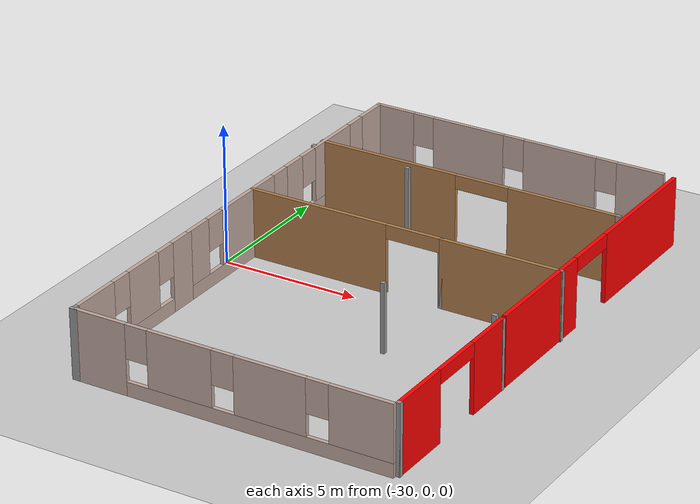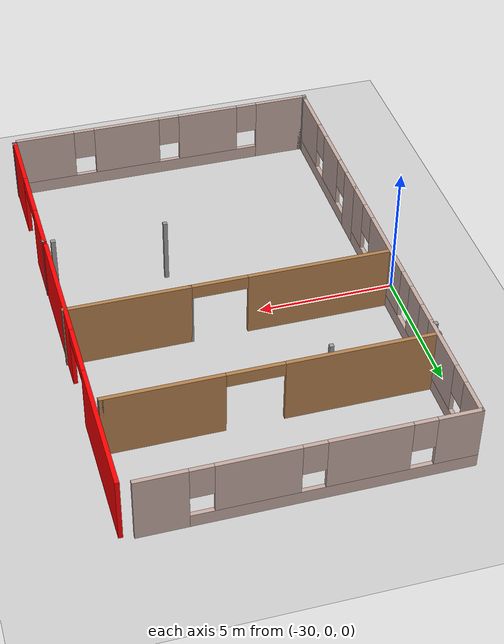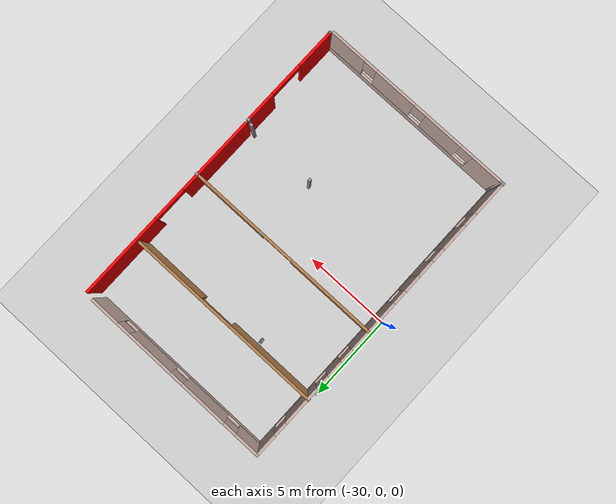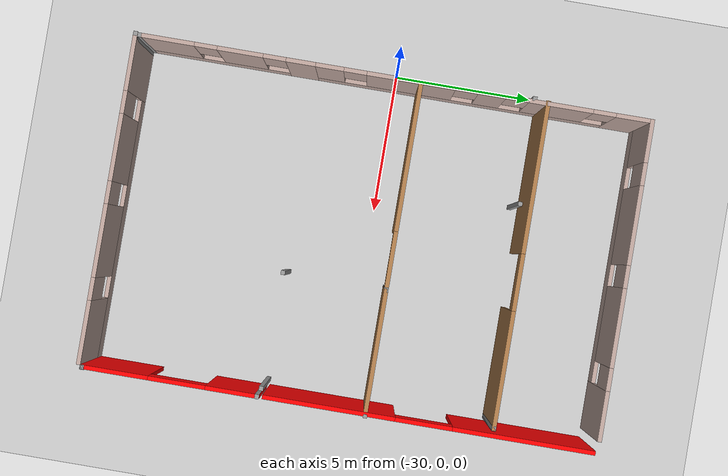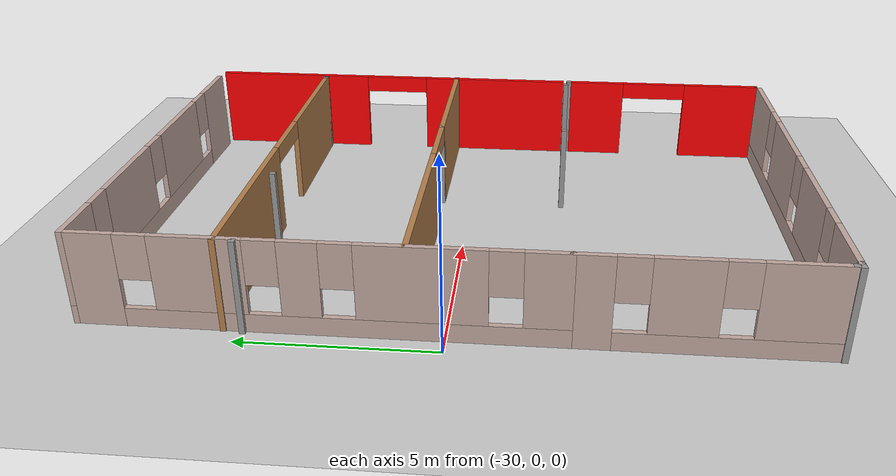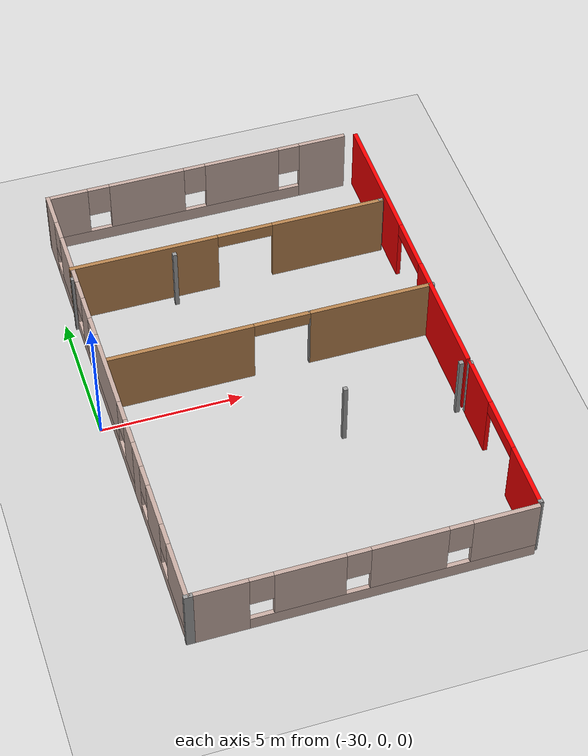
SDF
<sdf version="1.6">
 <world name="default">
  <model name="ground_plane">
   <static>1</static>
   <link name="link">
    <collision name="collision">
     <geometry><plane><normal>0 0 1</normal><size>100 100</size></plane></geometry>
     <surface><friction><ode><mu>100</mu><mu2>50</mu2></ode></friction></surface>
    </collision>
    <visual name="visual">
     <cast_shadows>0</cast_shadows>
     <geometry><plane><normal>0 0 1</normal><size>100 100</size></plane></geometry>
     <material>
      <script><uri>file://media/materials/scripts/gazebo.material</uri><name>Gazebo/Grey</name></script>
     </material>
    </visual>
   </link>
  </model>
  <model name="FloorPlan">
   <pose>0.309467 -3.19534 0 0 -0 0</pose>
   <link name="Wall_11">
    <pose>-18.2258 6.2811 0 0 -0 -1.5708</pose>
    <visual name="Wall_11_Visual_0">
     <pose>-3.31145 0 1.25 0 -0 0</pose>
     <geometry><box><size>4.97711 0.15 2.5</size></box></geometry>
     <material>
      <script><uri>file://media/materials/scripts/gazebo.material</uri><name>Gazebo/Grey</name></script>
      <ambient>1 0 0 1</ambient>
     </material>
     <meta><layer>0</layer></meta>
    </visual>
    <collision name="Wall_11_Collision_0">
     <geometry><box><size>4.97711 0.15 2.5</size></box></geometry>
     <pose>-3.31145 0 1.25 0 -0 0</pose>
    </collision>
    <visual name="Wall_11_Visual_1">
     <pose>3.48855 0 1.25 0 -0 0</pose>
     <geometry><box><size>4.62289 0.15 2.5</size></box></geometry>
     <material>
      <script><uri>file://media/materials/scripts/gazebo.material</uri><name>Gazebo/Grey</name></script>
      <ambient>1 0 0 1</ambient>
     </material>
     <meta><layer>0</layer></meta>
    </visual>
    <collision name="Wall_11_Collision_1">
     <geometry><box><size>4.62289 0.15 2.5</size></box></geometry>
     <pose>3.48855 0 1.25 0 -0 0</pose>
    </collision>
    <visual name="Wall_11_Visual_2">
     <pose>0.177109 0 2.25 0 -0 0</pose>
     <geometry><box><size>2 0.15 0.5</size></box></geometry>
     <material>
      <script><uri>file://media/materials/scripts/gazebo.material</uri><name>Gazebo/Grey</name></script>
      <ambient>1 0 0 1</ambient>
     </material>
     <meta><layer>0</layer></meta>
    </visual>
    <collision name="Wall_11_Collision_2">
     <geometry><box><size>2 0.15 0.5</size></box></geometry>
     <pose>0.177109 0 2.25 0 -0 0</pose>
    </collision>
   </link>
   <link name="Wall_13">
    <pose>-24.2574 12.1498 0 0 -0 3.14159</pose>
    <visual name="Wall_13_Visual_0">
     <pose>-4.7442 0 1.25 0 -0 0</pose>
     <geometry><box><size>1.7616 0.15 2.5</size></box></geometry>
     <material>
      <script><uri>file://media/materials/scripts/gazebo.material</uri><name>Gazebo/Grey</name></script>
      <ambient>0.760784 0.662745 0.627451 1</ambient>
     </material>
     <meta><layer>0</layer></meta>
    </visual>
    <collision name="Wall_13_Collision_0">
     <geometry><box><size>1.7616 0.15 2.5</size></box></geometry>
     <pose>-4.7442 0 1.25 0 -0 0</pose>
    </collision>
    <visual name="Wall_13_Visual_1">
     <pose>0.880798 0 0.25 0 -0 0</pose>
     <geometry><box><size>9.4884 0.15 0.5</size></box></geometry>
     <material>
      <script><uri>file://media/materials/scripts/gazebo.material</uri><name>Gazebo/Grey</name></script>
      <ambient>0.760784 0.662745 0.627451 1</ambient>
     </material>
     <meta><layer>0</layer></meta>
    </visual>
    <collision name="Wall_13_Collision_1">
     <geometry><box><size>9.4884 0.15 0.5</size></box></geometry>
     <pose>0.880798 0 0.25 0 -0 0</pose>
    </collision>
    <visual name="Wall_13_Visual_2">
     <pose>-1.67107 0 1.5 0 -0 0</pose>
     <geometry><box><size>2.78467 0.15 2</size></box></geometry>
     <material>
      <script><uri>file://media/materials/scripts/gazebo.material</uri><name>Gazebo/Grey</name></script>
      <ambient>0.760784 0.662745 0.627451 1</ambient>
     </material>
     <meta><layer>0</layer></meta>
    </visual>
    <collision name="Wall_13_Collision_2">
     <geometry><box><size>2.78467 0.15 2</size></box></geometry>
     <pose>-1.67107 0 1.5 0 -0 0</pose>
    </collision>
    <visual name="Wall_13_Visual_3">
     <pose>1.9136 0 1.5 0 -0 0</pose>
     <geometry><box><size>2.78467 0.15 2</size></box></geometry>
     <material>
      <script><uri>file://media/materials/scripts/gazebo.material</uri><name>Gazebo/Grey</name></script>
      <ambient>0.760784 0.662745 0.627451 1</ambient>
     </material>
     <meta><layer>0</layer></meta>
    </visual>
    <collision name="Wall_13_Collision_3">
     <geometry><box><size>2.78467 0.15 2</size></box></geometry>
     <pose>1.9136 0 1.5 0 -0 0</pose>
    </collision>
    <visual name="Wall_13_Visual_4">
     <pose>4.86547 0 1.5 0 -0 0</pose>
     <geometry><box><size>1.51907 0.15 2</size></box></geometry>
     <material>
      <script><uri>file://media/materials/scripts/gazebo.material</uri><name>Gazebo/Grey</name></script>
      <ambient>0.760784 0.662745 0.627451 1</ambient>
     </material>
     <meta><layer>0</layer></meta>
    </visual>
    <collision name="Wall_13_Collision_4">
     <geometry><box><size>1.51907 0.15 2</size></box></geometry>
     <pose>4.86547 0 1.5 0 -0 0</pose>
    </collision>
    <visual name="Wall_13_Visual_5">
     <pose>-3.4634 0 1.9 0 -0 0</pose>
     <geometry><box><size>0.8 0.15 1.2</size></box></geometry>
     <material>
      <script><uri>file://media/materials/scripts/gazebo.material</uri><name>Gazebo/Grey</name></script>
      <ambient>0.760784 0.662745 0.627451 1</ambient>
     </material>
     <meta><layer>0</layer></meta>
    </visual>
    <collision name="Wall_13_Collision_5">
     <geometry><box><size>0.8 0.15 1.2</size></box></geometry>
     <pose>-3.4634 0 1.9 0 -0 0</pose>
    </collision>
    <visual name="Wall_13_Visual_6">
     <pose>0.121265 0 1.9 0 -0 0</pose>
     <geometry><box><size>0.8 0.15 1.2</size></box></geometry>
     <material>
      <script><uri>file://media/materials/scripts/gazebo.material</uri><name>Gazebo/Grey</name></script>
      <ambient>0.760784 0.662745 0.627451 1</ambient>
     </material>
     <meta><layer>0</layer></meta>
    </visual>
    <collision name="Wall_13_Collision_6">
     <geometry><box><size>0.8 0.15 1.2</size></box></geometry>
     <pose>0.121265 0 1.9 0 -0 0</pose>
    </collision>
    <visual name="Wall_13_Visual_7">
     <pose>3.70593 0 1.9 0 -0 0</pose>
     <geometry><box><size>0.8 0.15 1.2</size></box></geometry>
     <material>
      <script><uri>file://media/materials/scripts/gazebo.material</uri><name>Gazebo/Grey</name></script>
      <ambient>0.760784 0.662745 0.627451 1</ambient>
     </material>
     <meta><layer>0</layer></meta>
    </visual>
    <collision name="Wall_13_Collision_7">
     <geometry><box><size>0.8 0.15 1.2</size></box></geometry>
     <pose>3.70593 0 1.9 0 -0 0</pose>
    </collision>
   </link>
   <link name="Wall_14">
    <pose>-29.8074 6.22478 0 0 -0 -1.5708</pose>
    <visual name="Wall_14_Visual_0">
     <pose>-5.33321 0 1.25 0 -0 0</pose>
     <geometry><box><size>1.33358 0.15 2.5</size></box></geometry>
     <material>
      <script><uri>file://media/materials/scripts/gazebo.material</uri><name>Gazebo/Grey</name></script>
      <ambient>0.760784 0.662745 0.627451 1</ambient>
     </material>
     <meta><layer>0</layer></meta>
    </visual>
    <collision name="Wall_14_Collision_0">
     <geometry><box><size>1.33358 0.15 2.5</size></box></geometry>
     <pose>-5.33321 0 1.25 0 -0 0</pose>
    </collision>
    <visual name="Wall_14_Visual_1">
     <pose>0.666789 0 0.25 0 -0 0</pose>
     <geometry><box><size>10.6664 0.15 0.5</size></box></geometry>
     <material>
      <script><uri>file://media/materials/scripts/gazebo.material</uri><name>Gazebo/Grey</name></script>
      <ambient>0.760784 0.662745 0.627451 1</ambient>
     </material>
     <meta><layer>0</layer></meta>
    </visual>
    <collision name="Wall_14_Collision_1">
     <geometry><box><size>10.6664 0.15 0.5</size></box></geometry>
     <pose>0.666789 0 0.25 0 -0 0</pose>
    </collision>
    <visual name="Wall_14_Visual_2">
     <pose>-2.7416 0 1.5 0 -0 0</pose>
     <geometry><box><size>2.24964 0.15 2</size></box></geometry>
     <material>
      <script><uri>file://media/materials/scripts/gazebo.material</uri><name>Gazebo/Grey</name></script>
      <ambient>0.760784 0.662745 0.627451 1</ambient>
     </material>
     <meta><layer>0</layer></meta>
    </visual>
    <collision name="Wall_14_Collision_2">
     <geometry><box><size>2.24964 0.15 2</size></box></geometry>
     <pose>-2.7416 0 1.5 0 -0 0</pose>
    </collision>
    <visual name="Wall_14_Visual_3">
     <pose>-0.333988 0 1.5 0 -0 0</pose>
     <geometry><box><size>0.965583 0.15 2</size></box></geometry>
     <material>
      <script><uri>file://media/materials/scripts/gazebo.material</uri><name>Gazebo/Grey</name></script>
      <ambient>0.760784 0.662745 0.627451 1</ambient>
     </material>
     <meta><layer>0</layer></meta>
    </visual>
    <collision name="Wall_14_Collision_3">
     <geometry><box><size>0.965583 0.15 2</size></box></geometry>
     <pose>-0.333988 0 1.5 0 -0 0</pose>
    </collision>
    <visual name="Wall_14_Visual_4">
     <pose>2.50164 0 1.5 0 -0 0</pose>
     <geometry><box><size>3.10568 0.15 2</size></box></geometry>
     <material>
      <script><uri>file://media/materials/scripts/gazebo.material</uri><name>Gazebo/Grey</name></script>
      <ambient>0.760784 0.662745 0.627451 1</ambient>
     </material>
     <meta><layer>0</layer></meta>
    </visual>
    <collision name="Wall_14_Collision_4">
     <geometry><box><size>3.10568 0.15 2</size></box></geometry>
     <pose>2.50164 0 1.5 0 -0 0</pose>
    </collision>
    <visual name="Wall_14_Visual_5">
     <pose>5.42724 0 1.5 0 -0 0</pose>
     <geometry><box><size>1.14552 0.15 2</size></box></geometry>
     <material>
      <script><uri>file://media/materials/scripts/gazebo.material</uri><name>Gazebo/Grey</name></script>
      <ambient>0.760784 0.662745 0.627451 1</ambient>
     </material>
     <meta><layer>0</layer></meta>
    </visual>
    <collision name="Wall_14_Collision_5">
     <geometry><box><size>1.14552 0.15 2</size></box></geometry>
     <pose>5.42724 0 1.5 0 -0 0</pose>
    </collision>
    <visual name="Wall_14_Visual_6">
     <pose>-4.26642 0 1.9 0 -0 0</pose>
     <geometry><box><size>0.8 0.15 1.2</size></box></geometry>
     <material>
      <script><uri>file://media/materials/scripts/gazebo.material</uri><name>Gazebo/Grey</name></script>
      <ambient>0.760784 0.662745 0.627451 1</ambient>
     </material>
     <meta><layer>0</layer></meta>
    </visual>
    <collision name="Wall_14_Collision_6">
     <geometry><box><size>0.8 0.15 1.2</size></box></geometry>
     <pose>-4.26642 0 1.9 0 -0 0</pose>
    </collision>
    <visual name="Wall_14_Visual_7">
     <pose>-1.21678 0 1.9 0 -0 0</pose>
     <geometry><box><size>0.8 0.15 1.2</size></box></geometry>
     <material>
      <script><uri>file://media/materials/scripts/gazebo.material</uri><name>Gazebo/Grey</name></script>
      <ambient>0.760784 0.662745 0.627451 1</ambient>
     </material>
     <meta><layer>0</layer></meta>
    </visual>
    <collision name="Wall_14_Collision_7">
     <geometry><box><size>0.8 0.15 1.2</size></box></geometry>
     <pose>-1.21678 0 1.9 0 -0 0</pose>
    </collision>
    <visual name="Wall_14_Visual_8">
     <pose>0.548803 0 1.9 0 -0 0</pose>
     <geometry><box><size>0.8 0.15 1.2</size></box></geometry>
     <material>
      <script><uri>file://media/materials/scripts/gazebo.material</uri><name>Gazebo/Grey</name></script>
      <ambient>0.760784 0.662745 0.627451 1</ambient>
     </material>
     <meta><layer>0</layer></meta>
    </visual>
    <collision name="Wall_14_Collision_8">
     <geometry><box><size>0.8 0.15 1.2</size></box></geometry>
     <pose>0.548803 0 1.9 0 -0 0</pose>
    </collision>
    <visual name="Wall_14_Visual_9">
     <pose>4.45449 0 1.9 0 -0 0</pose>
     <geometry><box><size>0.8 0.15 1.2</size></box></geometry>
     <material>
      <script><uri>file://media/materials/scripts/gazebo.material</uri><name>Gazebo/Grey</name></script>
      <ambient>0.760784 0.662745 0.627451 1</ambient>
     </material>
     <meta><layer>0</layer></meta>
    </visual>
    <collision name="Wall_14_Collision_9">
     <geometry><box><size>0.8 0.15 1.2</size></box></geometry>
     <pose>4.45449 0 1.9 0 -0 0</pose>
    </collision>
   </link>
   <link name="Wall_16">
    <collision name="Wall_16_Collision">
     <geometry><box><size>0.16 0.15 2.5</size></box></geometry>
     <pose>0 0 1.25 0 -0 0</pose>
    </collision>
    <visual name="Wall_16_Visual">
     <pose>0 0 1.25 0 -0 0</pose>
     <geometry><box><size>0.16 0.15 2.5</size></box></geometry>
     <material>
      <script><uri>file://media/materials/scripts/gazebo.material</uri><name>Gazebo/Grey</name></script>
      <ambient>1 1 1 1</ambient>
     </material>
     <meta><layer>0</layer></meta>
    </visual>
    <pose>-18.2024 0.299775 0 0 -0 0</pose>
   </link>
   <link name="Wall_19">
    <collision name="Wall_19_Collision">
     <geometry><box><size>0.15 0.15 2.5</size></box></geometry>
     <pose>0 0 1.25 0 -0 0</pose>
    </collision>
    <visual name="Wall_19_Visual">
     <pose>0 0 1.25 0 -0 0</pose>
     <geometry><box><size>0.15 0.15 2.5</size></box></geometry>
     <material>
      <script><uri>file://media/materials/scripts/gazebo.material</uri><name>Gazebo/Grey</name></script>
      <ambient>1 1 1 1</ambient>
     </material>
     <meta><layer>0</layer></meta>
    </visual>
    <pose>-29.9047 8.03008 0 0 -0 0</pose>
   </link>
   <link name="Wall_23">
    <collision name="Wall_23_Collision">
     <geometry><box><size>0.15 0.15 2.5</size></box></geometry>
     <pose>0 0 1.25 0 -0 0</pose>
    </collision>
    <visual name="Wall_23_Visual">
     <pose>0 0 1.25 0 -0 0</pose>
     <geometry><box><size>0.15 0.15 2.5</size></box></geometry>
     <material>
      <script><uri>file://media/materials/scripts/gazebo.material</uri><name>Gazebo/Grey</name></script>
      <ambient>1 1 1 1</ambient>
     </material>
     <meta><layer>0</layer></meta>
    </visual>
    <pose>-26.2408 8.12916 0 0 -0 0</pose>
   </link>
   <link name="Wall_34">
    <pose>-23.9824 4.0709 0 0 -0 0</pose>
    <visual name="Wall_34_Visual_0">
     <pose>-3.2427 0 1.25 0 -0 0</pose>
     <geometry><box><size>5.26459 0.15 2.5</size></box></geometry>
     <material>
      <script><uri>file://media/materials/scripts/gazebo.material</uri><name>Gazebo/Wood</name></script>
      <ambient>1 1 1 1</ambient>
     </material>
     <meta><layer>0</layer></meta>
    </visual>
    <collision name="Wall_34_Collision_0">
     <geometry><box><size>5.26459 0.15 2.5</size></box></geometry>
     <pose>-3.2427 0 1.25 0 -0 0</pose>
    </collision>
    <visual name="Wall_34_Visual_1">
     <pose>3.6323 0 1.25 0 -0 0</pose>
     <geometry><box><size>4.48541 0.15 2.5</size></box></geometry>
     <material>
      <script><uri>file://media/materials/scripts/gazebo.material</uri><name>Gazebo/Wood</name></script>
      <ambient>1 1 1 1</ambient>
     </material>
     <meta><layer>0</layer></meta>
    </visual>
    <collision name="Wall_34_Collision_1">
     <geometry><box><size>4.48541 0.15 2.5</size></box></geometry>
     <pose>3.6323 0 1.25 0 -0 0</pose>
    </collision>
    <visual name="Wall_34_Visual_2">
     <pose>0.389591 0 2.25 0 -0 0</pose>
     <geometry><box><size>2 0.15 0.5</size></box></geometry>
     <material>
      <script><uri>file://media/materials/scripts/gazebo.material</uri><name>Gazebo/Wood</name></script>
      <ambient>1 1 1 1</ambient>
     </material>
     <meta><layer>0</layer></meta>
    </visual>
    <collision name="Wall_34_Collision_2">
     <geometry><box><size>2 0.15 0.5</size></box></geometry>
     <pose>0.389591 0 2.25 0 -0 0</pose>
    </collision>
   </link>
   <link name="Wall_35">
    <collision name="Wall_35_Collision">
     <geometry><box><size>0.16 0.15 2.5</size></box></geometry>
     <pose>0 0 1.25 0 -0 0</pose>
    </collision>
    <visual name="Wall_35_Visual">
     <pose>0 0 1.25 0 -0 0</pose>
     <geometry><box><size>0.16 0.15 2.5</size></box></geometry>
     <material>
      <script><uri>file://media/materials/scripts/gazebo.material</uri><name>Gazebo/Grey</name></script>
      <ambient>1 1 1 1</ambient>
     </material>
     <meta><layer>0</layer></meta>
    </visual>
    <pose>-18.1774 4.0709 0 0 -0 0</pose>
   </link>
   <link name="Wall_40">
    <collision name="Wall_40_Collision">
     <geometry><box><size>0.16 0.15 2.5</size></box></geometry>
     <pose>0 0 1.25 0 -0 0</pose>
    </collision>
    <visual name="Wall_40_Visual">
     <pose>0 0 1.25 0 -0 0</pose>
     <geometry><box><size>0.16 0.15 2.5</size></box></geometry>
     <material>
      <script><uri>file://media/materials/scripts/gazebo.material</uri><name>Gazebo/Grey</name></script>
      <ambient>1 1 1 1</ambient>
     </material>
     <meta><layer>0</layer></meta>
    </visual>
    <pose>-22.5545 4.0709 0 0 -0 0</pose>
   </link>
   <link name="Wall_42">
    <collision name="Wall_42_Collision">
     <geometry><box><size>0.15 0.15 2.5</size></box></geometry>
     <pose>0 0 1.25 0 -0 0</pose>
    </collision>
    <visual name="Wall_42_Visual">
     <pose>0 0 1.25 0 -0 0</pose>
     <geometry><box><size>0.15 0.15 2.5</size></box></geometry>
     <material>
      <script><uri>file://media/materials/scripts/gazebo.material</uri><name>Gazebo/Grey</name></script>
      <ambient>1 1 1 1</ambient>
     </material>
     <meta><layer>0</layer></meta>
    </visual>
    <pose>-22.5495 0.470897 0 0 -0 0</pose>
   </link>
   <link name="Wall_47">
    <collision name="Wall_47_Collision">
     <geometry><box><size>0.3 0.15 2.5</size></box></geometry>
     <pose>0 0 1.25 0 -0 0</pose>
    </collision>
    <visual name="Wall_47_Visual">
     <pose>0 0 1.25 0 -0 0</pose>
     <geometry><box><size>0.3 0.15 2.5</size></box></geometry>
     <material>
      <script><uri>file://media/materials/scripts/gazebo.material</uri><name>Gazebo/Grey</name></script>
      <ambient>1 1 1 1</ambient>
     </material>
     <meta><layer>0</layer></meta>
    </visual>
    <pose>-29.7609 -5.93407 0 0 -0 0</pose>
   </link>
   <link name="Wall_48">
    <pose>-24.0109 -5.93407 0 0 -0 0</pose>
    <visual name="Wall_48_Visual_0">
     <pose>-4.78369 0 1.25 0 -0 0</pose>
     <geometry><box><size>1.93261 0.15 2.5</size></box></geometry>
     <material>
      <script><uri>file://media/materials/scripts/gazebo.material</uri><name>Gazebo/Grey</name></script>
      <ambient>0.760784 0.662745 0.627451 1</ambient>
     </material>
     <meta><layer>0</layer></meta>
    </visual>
    <collision name="Wall_48_Collision_0">
     <geometry><box><size>1.93261 0.15 2.5</size></box></geometry>
     <pose>-4.78369 0 1.25 0 -0 0</pose>
    </collision>
    <visual name="Wall_48_Visual_1">
     <pose>0.966306 0 0.25 0 -0 0</pose>
     <geometry><box><size>9.56739 0.15 0.5</size></box></geometry>
     <material>
      <script><uri>file://media/materials/scripts/gazebo.material</uri><name>Gazebo/Grey</name></script>
      <ambient>0.760784 0.662745 0.627451 1</ambient>
     </material>
     <meta><layer>0</layer></meta>
    </visual>
    <collision name="Wall_48_Collision_1">
     <geometry><box><size>9.56739 0.15 0.5</size></box></geometry>
     <pose>0.966306 0 0.25 0 -0 0</pose>
    </collision>
    <visual name="Wall_48_Visual_2">
     <pose>-1.83906 0 1.5 0 -0 0</pose>
     <geometry><box><size>2.35665 0.15 2</size></box></geometry>
     <material>
      <script><uri>file://media/materials/scripts/gazebo.material</uri><name>Gazebo/Grey</name></script>
      <ambient>0.760784 0.662745 0.627451 1</ambient>
     </material>
     <meta><layer>0</layer></meta>
    </visual>
    <collision name="Wall_48_Collision_2">
     <geometry><box><size>2.35665 0.15 2</size></box></geometry>
     <pose>-1.83906 0 1.5 0 -0 0</pose>
    </collision>
    <visual name="Wall_48_Visual_3">
     <pose>1.42459 0 1.5 0 -0 0</pose>
     <geometry><box><size>2.57066 0.15 2</size></box></geometry>
     <material>
      <script><uri>file://media/materials/scripts/gazebo.material</uri><name>Gazebo/Grey</name></script>
      <ambient>0.760784 0.662745 0.627451 1</ambient>
     </material>
     <meta><layer>0</layer></meta>
    </visual>
    <collision name="Wall_48_Collision_3">
     <geometry><box><size>2.57066 0.15 2</size></box></geometry>
     <pose>1.42459 0 1.5 0 -0 0</pose>
    </collision>
    <visual name="Wall_48_Visual_4">
     <pose>4.62996 0 1.5 0 -0 0</pose>
     <geometry><box><size>2.24008 0.15 2</size></box></geometry>
     <material>
      <script><uri>file://media/materials/scripts/gazebo.material</uri><name>Gazebo/Grey</name></script>
      <ambient>0.760784 0.662745 0.627451 1</ambient>
     </material>
     <meta><layer>0</layer></meta>
    </visual>
    <collision name="Wall_48_Collision_4">
     <geometry><box><size>2.24008 0.15 2</size></box></geometry>
     <pose>4.62996 0 1.5 0 -0 0</pose>
    </collision>
    <visual name="Wall_48_Visual_5">
     <pose>-3.41739 0 1.9 0 -0 0</pose>
     <geometry><box><size>0.8 0.15 1.2</size></box></geometry>
     <material>
      <script><uri>file://media/materials/scripts/gazebo.material</uri><name>Gazebo/Grey</name></script>
      <ambient>0.760784 0.662745 0.627451 1</ambient>
     </material>
     <meta><layer>0</layer></meta>
    </visual>
    <collision name="Wall_48_Collision_5">
     <geometry><box><size>0.8 0.15 1.2</size></box></geometry>
     <pose>-3.41739 0 1.9 0 -0 0</pose>
    </collision>
    <visual name="Wall_48_Visual_6">
     <pose>-0.26074 0 1.9 0 -0 0</pose>
     <geometry><box><size>0.8 0.15 1.2</size></box></geometry>
     <material>
      <script><uri>file://media/materials/scripts/gazebo.material</uri><name>Gazebo/Grey</name></script>
      <ambient>0.760784 0.662745 0.627451 1</ambient>
     </material>
     <meta><layer>0</layer></meta>
    </visual>
    <collision name="Wall_48_Collision_6">
     <geometry><box><size>0.8 0.15 1.2</size></box></geometry>
     <pose>-0.26074 0 1.9 0 -0 0</pose>
    </collision>
    <visual name="Wall_48_Visual_7">
     <pose>3.10992 0 1.9 0 -0 0</pose>
     <geometry><box><size>0.8 0.15 1.2</size></box></geometry>
     <material>
      <script><uri>file://media/materials/scripts/gazebo.material</uri><name>Gazebo/Grey</name></script>
      <ambient>0.760784 0.662745 0.627451 1</ambient>
     </material>
     <meta><layer>0</layer></meta>
    </visual>
    <collision name="Wall_48_Collision_7">
     <geometry><box><size>0.8 0.15 1.2</size></box></geometry>
     <pose>3.10992 0 1.9 0 -0 0</pose>
    </collision>
   </link>
   <link name="Wall_56">
    <pose>-29.8074 -2.75022 0 0 -0 -1.5708</pose>
    <visual name="Wall_56_Visual_0">
     <pose>-2.60494 0 1.25 0 -0 0</pose>
     <geometry><box><size>1.04012 0.15 2.5</size></box></geometry>
     <material>
      <script><uri>file://media/materials/scripts/gazebo.material</uri><name>Gazebo/Grey</name></script>
      <ambient>0.760784 0.662745 0.627451 1</ambient>
     </material>
     <meta><layer>0</layer></meta>
    </visual>
    <collision name="Wall_56_Collision_0">
     <geometry><box><size>1.04012 0.15 2.5</size></box></geometry>
     <pose>-2.60494 0 1.25 0 -0 0</pose>
    </collision>
    <visual name="Wall_56_Visual_1">
     <pose>0.520059 0 0.25 0 -0 0</pose>
     <geometry><box><size>5.20988 0.15 0.5</size></box></geometry>
     <material>
      <script><uri>file://media/materials/scripts/gazebo.material</uri><name>Gazebo/Grey</name></script>
      <ambient>0.760784 0.662745 0.627451 1</ambient>
     </material>
     <meta><layer>0</layer></meta>
    </visual>
    <collision name="Wall_56_Collision_1">
     <geometry><box><size>5.20988 0.15 0.5</size></box></geometry>
     <pose>0.520059 0 0.25 0 -0 0</pose>
    </collision>
    <visual name="Wall_56_Visual_2">
     <pose>-0.481076 0 1.5 0 -0 0</pose>
     <geometry><box><size>1.60761 0.15 2</size></box></geometry>
     <material>
      <script><uri>file://media/materials/scripts/gazebo.material</uri><name>Gazebo/Grey</name></script>
      <ambient>0.760784 0.662745 0.627451 1</ambient>
     </material>
     <meta><layer>0</layer></meta>
    </visual>
    <collision name="Wall_56_Collision_2">
     <geometry><box><size>1.60761 0.15 2</size></box></geometry>
     <pose>-0.481076 0 1.5 0 -0 0</pose>
    </collision>
    <visual name="Wall_56_Visual_3">
     <pose>2.12386 0 1.5 0 -0 0</pose>
     <geometry><box><size>2.00227 0.15 2</size></box></geometry>
     <material>
      <script><uri>file://media/materials/scripts/gazebo.material</uri><name>Gazebo/Grey</name></script>
      <ambient>0.760784 0.662745 0.627451 1</ambient>
     </material>
     <meta><layer>0</layer></meta>
    </visual>
    <collision name="Wall_56_Collision_3">
     <geometry><box><size>2.00227 0.15 2</size></box></geometry>
     <pose>2.12386 0 1.5 0 -0 0</pose>
    </collision>
    <visual name="Wall_56_Visual_4">
     <pose>-1.68488 0 1.9 0 -0 0</pose>
     <geometry><box><size>0.8 0.15 1.2</size></box></geometry>
     <material>
      <script><uri>file://media/materials/scripts/gazebo.material</uri><name>Gazebo/Grey</name></script>
      <ambient>0.760784 0.662745 0.627451 1</ambient>
     </material>
     <meta><layer>0</layer></meta>
    </visual>
    <collision name="Wall_56_Collision_4">
     <geometry><box><size>0.8 0.15 1.2</size></box></geometry>
     <pose>-1.68488 0 1.9 0 -0 0</pose>
    </collision>
    <visual name="Wall_56_Visual_5">
     <pose>0.722731 0 1.9 0 -0 0</pose>
     <geometry><box><size>0.8 0.15 1.2</size></box></geometry>
     <material>
      <script><uri>file://media/materials/scripts/gazebo.material</uri><name>Gazebo/Grey</name></script>
      <ambient>0.760784 0.662745 0.627451 1</ambient>
     </material>
     <meta><layer>0</layer></meta>
    </visual>
    <collision name="Wall_56_Collision_5">
     <geometry><box><size>0.8 0.15 1.2</size></box></geometry>
     <pose>0.722731 0 1.9 0 -0 0</pose>
    </collision>
   </link>
   <link name="Wall_57">
    <collision name="Wall_57_Collision">
     <geometry><box><size>0.15 0.15 2.5</size></box></geometry>
     <pose>0 0 1.25 0 -0 0</pose>
    </collision>
    <visual name="Wall_57_Visual">
     <pose>0 0 1.25 0 -0 0</pose>
     <geometry><box><size>0.15 0.15 2.5</size></box></geometry>
     <material>
      <script><uri>file://media/materials/scripts/gazebo.material</uri><name>Gazebo/Grey</name></script>
      <ambient>1 1 1 1</ambient>
     </material>
     <meta><layer>0</layer></meta>
    </visual>
    <pose>-29.8074 -5.80023 0 0 -0 0</pose>
   </link>
   <link name="Wall_61">
    <pose>-24.1609 8.5116 0 0 -0 0</pose>
    <visual name="Wall_61_Visual_0">
     <pose>-3.07695 0 1.25 0 -0 0</pose>
     <geometry><box><size>5.34609 0.15 2.5</size></box></geometry>
     <material>
      <script><uri>file://media/materials/scripts/gazebo.material</uri><name>Gazebo/Wood</name></script>
      <ambient>1 1 1 1</ambient>
     </material>
     <meta><layer>0</layer></meta>
    </visual>
    <collision name="Wall_61_Collision_0">
     <geometry><box><size>5.34609 0.15 2.5</size></box></geometry>
     <pose>-3.07695 0 1.25 0 -0 0</pose>
    </collision>
    <visual name="Wall_61_Visual_1">
     <pose>3.67305 0 1.25 0 -0 0</pose>
     <geometry><box><size>4.15391 0.15 2.5</size></box></geometry>
     <material>
      <script><uri>file://media/materials/scripts/gazebo.material</uri><name>Gazebo/Wood</name></script>
      <ambient>1 1 1 1</ambient>
     </material>
     <meta><layer>0</layer></meta>
    </visual>
    <collision name="Wall_61_Collision_1">
     <geometry><box><size>4.15391 0.15 2.5</size></box></geometry>
     <pose>3.67305 0 1.25 0 -0 0</pose>
    </collision>
    <visual name="Wall_61_Visual_2">
     <pose>0.596094 0 2.25 0 -0 0</pose>
     <geometry><box><size>2 0.15 0.5</size></box></geometry>
     <material>
      <script><uri>file://media/materials/scripts/gazebo.material</uri><name>Gazebo/Wood</name></script>
      <ambient>1 1 1 1</ambient>
     </material>
     <meta><layer>0</layer></meta>
    </visual>
    <collision name="Wall_61_Collision_2">
     <geometry><box><size>2 0.15 0.5</size></box></geometry>
     <pose>0.596094 0 2.25 0 -0 0</pose>
    </collision>
   </link>
   <link name="Wall_62">
    <collision name="Wall_62_Collision">
     <geometry><box><size>0.16 0.15 2.5</size></box></geometry>
     <pose>0 0 1.25 0 -0 0</pose>
    </collision>
    <visual name="Wall_62_Visual">
     <pose>0 0 1.25 0 -0 0</pose>
     <geometry><box><size>0.16 0.15 2.5</size></box></geometry>
     <material>
      <script><uri>file://media/materials/scripts/gazebo.material</uri><name>Gazebo/Grey</name></script>
      <ambient>1 1 1 1</ambient>
     </material>
     <meta><layer>0</layer></meta>
    </visual>
    <pose>-18.4809 8.5116 0 0 -0 0</pose>
   </link>
   <link name="Wall_63">
    <collision name="Wall_63_Collision">
     <geometry><box><size>0.16 0.15 2.5</size></box></geometry>
     <pose>0 0 1.25 0 -0 0</pose>
    </collision>
    <visual name="Wall_63_Visual">
     <pose>0 0 1.25 0 -0 0</pose>
     <geometry><box><size>0.16 0.15 2.5</size></box></geometry>
     <material>
      <script><uri>file://media/materials/scripts/gazebo.material</uri><name>Gazebo/Grey</name></script>
      <ambient>1 1 1 1</ambient>
     </material>
     <meta><layer>0</layer></meta>
    </visual>
    <pose>-18.4709 8.5116 0 0 -0 0</pose>
   </link>
   <link name="Wall_65">
    <pose>-18.2074 -2.75022 0 0 -0 -1.5708</pose>
    <visual name="Wall_65_Visual_0">
     <pose>-2.18266 0 1.25 0 -0 0</pose>
     <geometry><box><size>1.88469 0.15 2.5</size></box></geometry>
     <material>
      <script><uri>file://media/materials/scripts/gazebo.material</uri><name>Gazebo/Grey</name></script>
      <ambient>1 0 0 1</ambient>
     </material>
     <meta><layer>0</layer></meta>
    </visual>
    <collision name="Wall_65_Collision_0">
     <geometry><box><size>1.88469 0.15 2.5</size></box></geometry>
     <pose>-2.18266 0 1.25 0 -0 0</pose>
    </collision>
    <visual name="Wall_65_Visual_1">
     <pose>1.94234 0 1.25 0 -0 0</pose>
     <geometry><box><size>2.36531 0.15 2.5</size></box></geometry>
     <material>
      <script><uri>file://media/materials/scripts/gazebo.material</uri><name>Gazebo/Grey</name></script>
      <ambient>1 0 0 1</ambient>
     </material>
     <meta><layer>0</layer></meta>
    </visual>
    <collision name="Wall_65_Collision_1">
     <geometry><box><size>2.36531 0.15 2.5</size></box></geometry>
     <pose>1.94234 0 1.25 0 -0 0</pose>
    </collision>
    <visual name="Wall_65_Visual_2">
     <pose>-0.240314 0 2.25 0 -0 0</pose>
     <geometry><box><size>2 0.15 0.5</size></box></geometry>
     <material>
      <script><uri>file://media/materials/scripts/gazebo.material</uri><name>Gazebo/Grey</name></script>
      <ambient>1 0 0 1</ambient>
     </material>
     <meta><layer>0</layer></meta>
    </visual>
    <collision name="Wall_65_Collision_2">
     <geometry><box><size>2 0.15 0.5</size></box></geometry>
     <pose>-0.240314 0 2.25 0 -0 0</pose>
    </collision>
   </link>
   <link name="Wall_66">
    <collision name="Wall_66_Collision">
     <geometry><box><size>0.16 0.15 2.5</size></box></geometry>
     <pose>0 0 1.25 0 -0 0</pose>
    </collision>
    <visual name="Wall_66_Visual">
     <pose>0 0 1.25 0 -0 0</pose>
     <geometry><box><size>0.16 0.15 2.5</size></box></geometry>
     <material>
      <script><uri>file://media/materials/scripts/gazebo.material</uri><name>Gazebo/Grey</name></script>
      <ambient>1 1 1 1</ambient>
     </material>
     <meta><layer>0</layer></meta>
    </visual>
    <pose>-18.2024 -5.80023 0 0 -0 0</pose>
   </link>
   <link name="Wall_67">
    <collision name="Wall_67_Collision">
     <geometry><box><size>0.16 0.15 2.5</size></box></geometry>
     <pose>0 0 1.25 0 -0 0</pose>
    </collision>
    <visual name="Wall_67_Visual">
     <pose>0 0 1.25 0 -0 0</pose>
     <geometry><box><size>0.16 0.15 2.5</size></box></geometry>
     <material>
      <script><uri>file://media/materials/scripts/gazebo.material</uri><name>Gazebo/Grey</name></script>
      <ambient>1 1 1 1</ambient>
     </material>
     <meta><layer>0</layer></meta>
    </visual>
    <pose>-18.1924 -5.80023 0 0 -0 0</pose>
   </link>
   <link name="Wall_68">
    <collision name="Wall_68_Collision">
     <geometry><box><size>0.16 0.15 2.5</size></box></geometry>
     <pose>0 0 1.25 0 -0 0</pose>
    </collision>
    <visual name="Wall_68_Visual">
     <pose>0 0 1.25 0 -0 0</pose>
     <geometry><box><size>0.16 0.15 2.5</size></box></geometry>
     <material>
      <script><uri>file://media/materials/scripts/gazebo.material</uri><name>Gazebo/Grey</name></script>
      <ambient>1 1 1 1</ambient>
     </material>
     <meta><layer>0</layer></meta>
    </visual>
    <pose>-18.1924 -5.80023 0 0 -0 3.14159</pose>
   </link>
   <link name="Wall_9">
    <collision name="Wall_9_Collision">
     <geometry><box><size>0.16 0.15 2.5</size></box></geometry>
     <pose>0 0 1.25 0 -0 0</pose>
    </collision>
    <visual name="Wall_9_Visual">
     <pose>0 0 1.25 0 -0 0</pose>
     <geometry><box><size>0.16 0.15 2.5</size></box></geometry>
     <material>
      <script><uri>file://media/materials/scripts/gazebo.material</uri><name>Gazebo/Grey</name></script>
      <ambient>1 1 1 1</ambient>
     </material>
     <meta><layer>0</layer></meta>
    </visual>
    <pose>-18.5024 0.399775 0 0 -0 0</pose>
   </link>
   <static>1</static>
  </model>
 </world>
</sdf>
